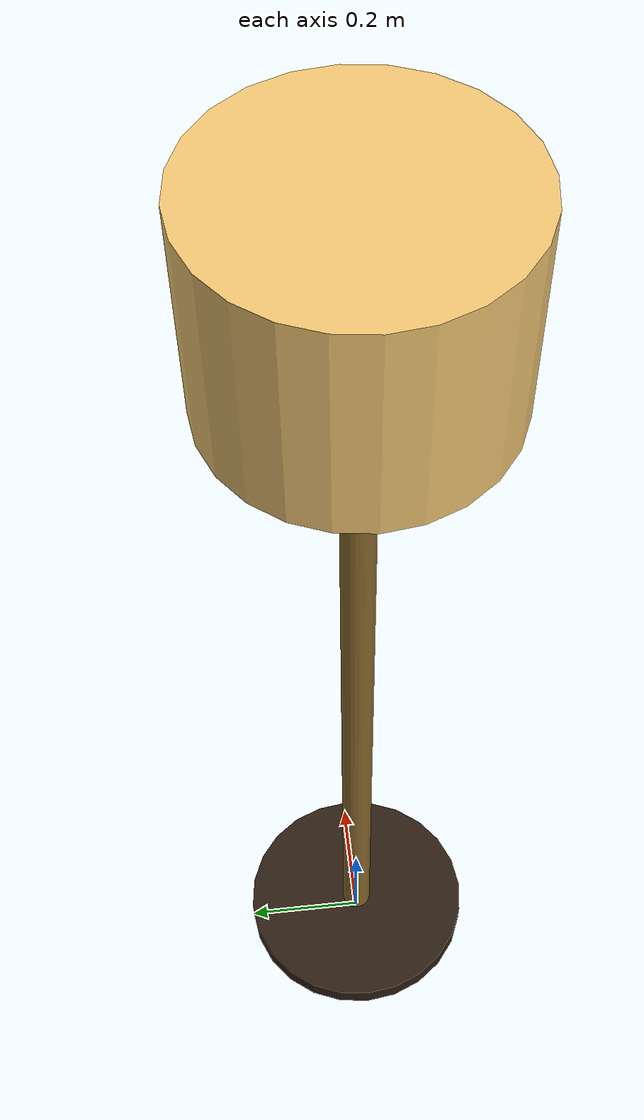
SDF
<?xml version='1.0' encoding='utf-8'?>
<sdf version="1.7">
  <model name="floor_lamp">
    <static>true</static>
    <!-- 스탠드형 카페 전등. 베이스 + 브래스 폴 + 따뜻한 갓 + 갓 안 point light.
         total height ~1.74m. collision: 베이스 + 폴만. -->

    <link name="base">
      <pose>0 0 0.020 0 0 0</pose>
      <visual name="v">
        <geometry><cylinder><radius>0.200</radius><length>0.040</length></cylinder></geometry>
        <material>
          <ambient>0.10 0.07 0.05 1</ambient>
          <diffuse>0.18 0.12 0.08 1</diffuse>
          <specular>0.20 0.20 0.20 1</specular>
        </material>
      </visual>
      <collision name="c">
        <geometry><cylinder><radius>0.200</radius><length>0.040</length></cylinder></geometry>
      </collision>
    </link>

    <link name="pole">
      <pose>0 0 0.740 0 0 0</pose>
      <visual name="v">
        <geometry><cylinder><radius>0.025</radius><length>1.400</length></cylinder></geometry>
        <material>
          <ambient>0.30 0.22 0.10 1</ambient>
          <diffuse>0.55 0.42 0.18 1</diffuse>
          <specular>0.60 0.55 0.40 1</specular>
        </material>
      </visual>
      <collision name="c">
        <geometry><cylinder><radius>0.025</radius><length>1.400</length></cylinder></geometry>
      </collision>
    </link>

    <link name="shade">
      <pose>0 0 1.590 0 0 0</pose>
      <visual name="v">
        <geometry><cylinder><radius>0.200</radius><length>0.300</length></cylinder></geometry>
        <material>
          <ambient>0.55 0.40 0.20 1</ambient>
          <diffuse>0.95 0.78 0.45 1</diffuse>
          <specular>0.20 0.18 0.10 1</specular>
          <emissive>0.30 0.22 0.10 1</emissive>
        </material>
      </visual>
      <light type="point" name="bulb">
        <pose>0 0 0.050 0 0 0</pose>
        <diffuse>1.00 0.85 0.60 1</diffuse>
        <specular>0.20 0.18 0.12 1</specular>
        <attenuation>
          <range>5</range>
          <constant>0.4</constant>
          <linear>0.20</linear>
          <quadratic>0.10</quadratic>
        </attenuation>
        <cast_shadows>false</cast_shadows>
      </light>
    </link>
  </model>
</sdf>
